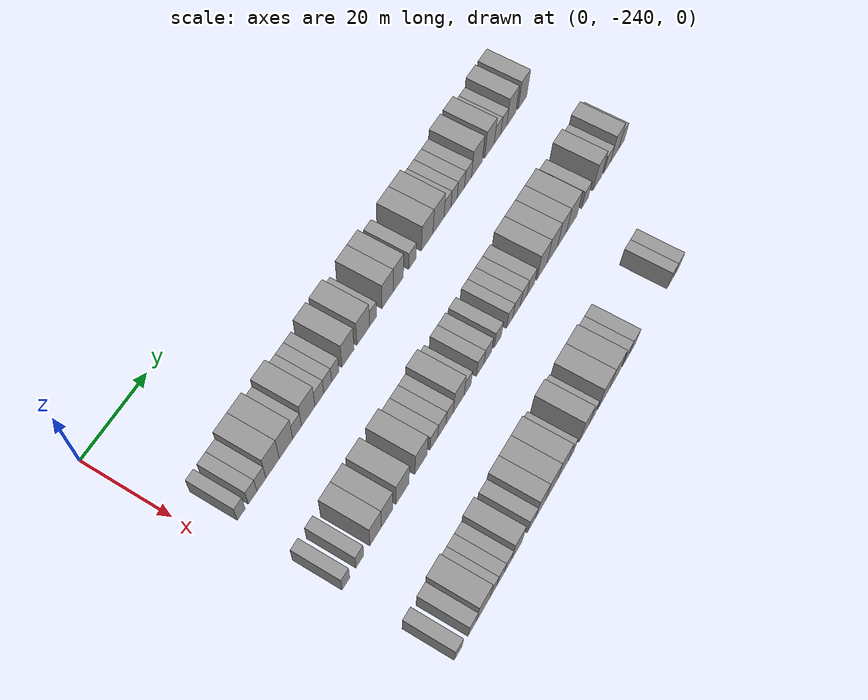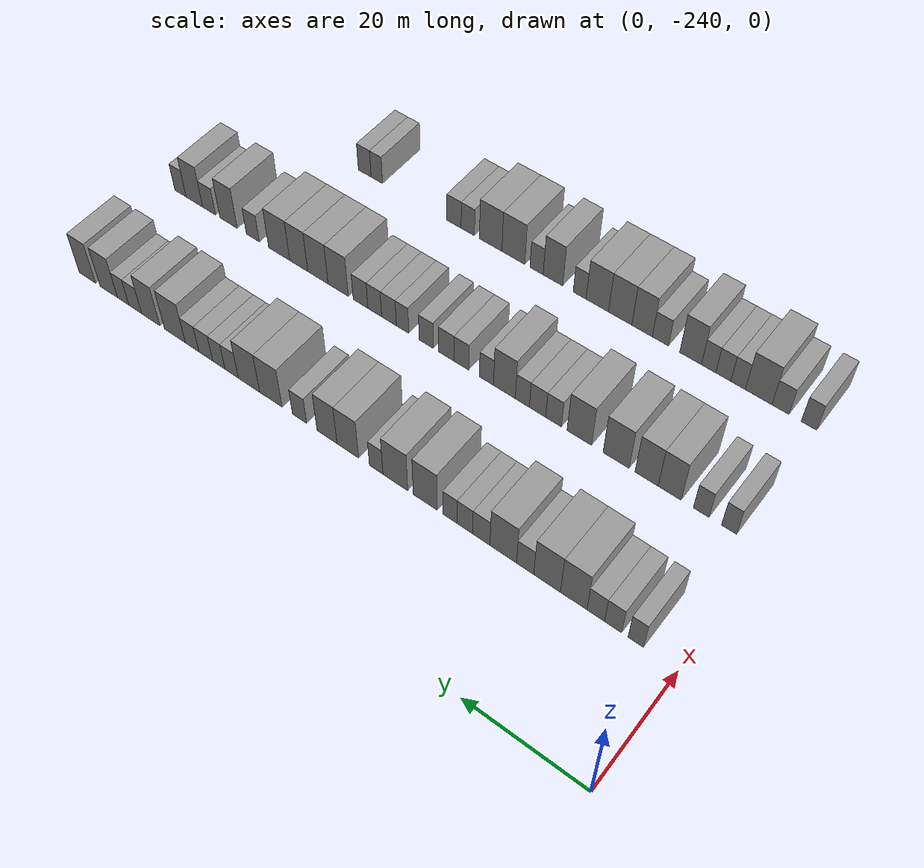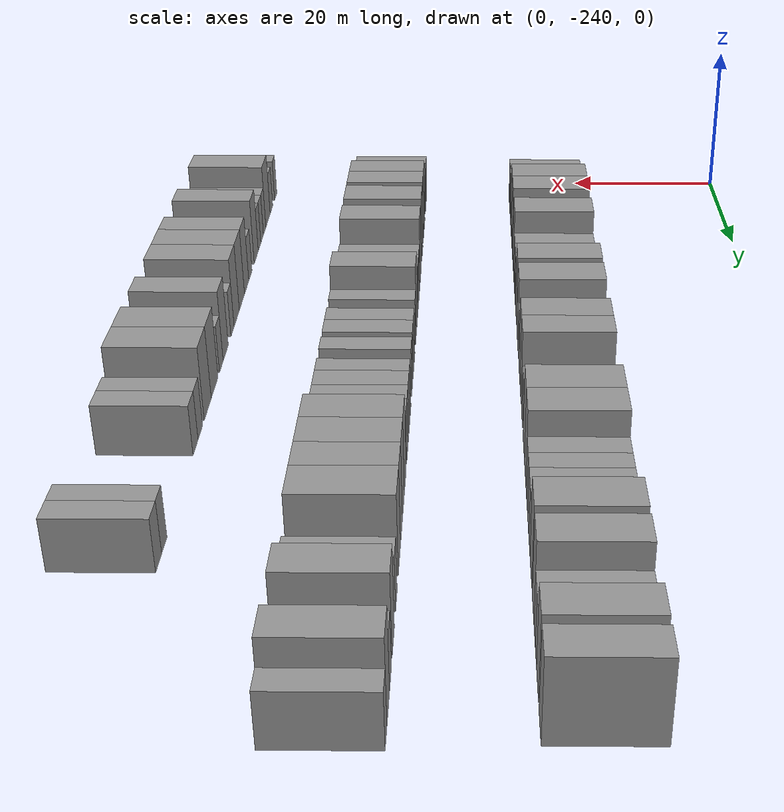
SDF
<sdf version="1.6">
 <world name="default">
  <model name="building_41">
   <static>1</static>
   <pose>25.0000 -233.4140 0 0.000000 0.000000 0.000000</pose>
   <link name="link">
    <pose>0 0 3.00 0 0 0</pose>
    <collision name="collision"><geometry><box><size>10.0000 2.4038 6.0000</size></box></geometry></collision>
    <visual name="visual">
     <cast_shadows>0</cast_shadows>
     <geometry><box><size>10.0000 2.4038 6.0000</size></box></geometry>
     <material>
      <script>
       <uri>model://grey_wall/materials/scripts</uri>
       <uri>model://grey_wall/materials/textures</uri>
       <name>vrc/grey_wall</name>
      </script>
     </material>
    </visual>
   </link>
  </model>
  <model name="building_42">
   <static>1</static>
   <pose>25.0000 -229.8659 0 0.000000 0.000000 0.000000</pose>
   <link name="link">
    <pose>0 0 3.00 0 0 0</pose>
    <collision name="collision"><geometry><box><size>10.0000 2.6924 6.0000</size></box></geometry></collision>
    <visual name="visual">
     <cast_shadows>0</cast_shadows>
     <geometry><box><size>10.0000 2.6924 6.0000</size></box></geometry>
     <material>
      <script>
       <uri>model://grey_wall/materials/scripts</uri>
       <uri>model://grey_wall/materials/textures</uri>
       <name>vrc/grey_wall</name>
      </script>
     </material>
    </visual>
   </link>
  </model>
  <model name="building_43">
   <static>1</static>
   <pose>25.0000 -227.1198 0 0.000000 0.000000 0.000000</pose>
   <link name="link">
    <pose>0 0 3.00 0 0 0</pose>
    <collision name="collision"><geometry><box><size>10.0000 2.7999 6.0000</size></box></geometry></collision>
    <visual name="visual">
     <cast_shadows>0</cast_shadows>
     <geometry><box><size>10.0000 2.7999 6.0000</size></box></geometry>
     <material>
      <script>
       <uri>model://grey_wall/materials/scripts</uri>
       <uri>model://grey_wall/materials/textures</uri>
       <name>vrc/grey_wall</name>
      </script>
     </material>
    </visual>
   </link>
  </model>
  <model name="building_44">
   <static>1</static>
   <pose>25.0000 -223.5872 0 0.000000 0.000000 0.000000</pose>
   <link name="link">
    <pose>0 0 4.50 0 0 0</pose>
    <collision name="collision"><geometry><box><size>10.0000 4.2653 9.0000</size></box></geometry></collision>
    <visual name="visual">
     <cast_shadows>0</cast_shadows>
     <geometry><box><size>10.0000 4.2653 9.0000</size></box></geometry>
     <material>
      <script>
       <uri>model://grey_wall/materials/scripts</uri>
       <uri>model://grey_wall/materials/textures</uri>
       <name>vrc/grey_wall</name>
      </script>
     </material>
    </visual>
   </link>
  </model>
  <model name="building_45">
   <static>1</static>
   <pose>25.0000 -219.2611 0 0.000000 0.000000 0.000000</pose>
   <link name="link">
    <pose>0 0 4.50 0 0 0</pose>
    <collision name="collision"><geometry><box><size>10.0000 4.3868 9.0000</size></box></geometry></collision>
    <visual name="visual">
     <cast_shadows>0</cast_shadows>
     <geometry><box><size>10.0000 4.3868 9.0000</size></box></geometry>
     <material>
      <script>
       <uri>model://grey_wall/materials/scripts</uri>
       <uri>model://grey_wall/materials/textures</uri>
       <name>vrc/grey_wall</name>
      </script>
     </material>
    </visual>
   </link>
  </model>
  <model name="building_46">
   <static>1</static>
   <pose>25.0000 -215.6398 0 0.000000 0.000000 0.000000</pose>
   <link name="link">
    <pose>0 0 3.00 0 0 0</pose>
    <collision name="collision"><geometry><box><size>10.0000 2.8558 6.0000</size></box></geometry></collision>
    <visual name="visual">
     <cast_shadows>0</cast_shadows>
     <geometry><box><size>10.0000 2.8558 6.0000</size></box></geometry>
     <material>
      <script>
       <uri>model://grey_wall/materials/scripts</uri>
       <uri>model://grey_wall/materials/textures</uri>
       <name>vrc/grey_wall</name>
      </script>
     </material>
    </visual>
   </link>
  </model>
  <model name="building_47">
   <static>1</static>
   <pose>25.0000 -211.9693 0 0.000000 0.000000 0.000000</pose>
   <link name="link">
    <pose>0 0 4.50 0 0 0</pose>
    <collision name="collision"><geometry><box><size>10.0000 4.4852 9.0000</size></box></geometry></collision>
    <visual name="visual">
     <cast_shadows>0</cast_shadows>
     <geometry><box><size>10.0000 4.4852 9.0000</size></box></geometry>
     <material>
      <script>
       <uri>model://grey_wall/materials/scripts</uri>
       <uri>model://grey_wall/materials/textures</uri>
       <name>vrc/grey_wall</name>
      </script>
     </material>
    </visual>
   </link>
  </model>
  <model name="building_48">
   <static>1</static>
   <pose>25.0000 -208.2581 0 0.000000 0.000000 0.000000</pose>
   <link name="link">
    <pose>0 0 3.00 0 0 0</pose>
    <collision name="collision"><geometry><box><size>10.0000 2.9372 6.0000</size></box></geometry></collision>
    <visual name="visual">
     <cast_shadows>0</cast_shadows>
     <geometry><box><size>10.0000 2.9372 6.0000</size></box></geometry>
     <material>
      <script>
       <uri>model://grey_wall/materials/scripts</uri>
       <uri>model://grey_wall/materials/textures</uri>
       <name>vrc/grey_wall</name>
      </script>
     </material>
    </visual>
   </link>
  </model>
  <model name="building_49">
   <static>1</static>
   <pose>25.0000 -205.4530 0 0.000000 0.000000 0.000000</pose>
   <link name="link">
    <pose>0 0 3.00 0 0 0</pose>
    <collision name="collision"><geometry><box><size>10.0000 2.6730 6.0000</size></box></geometry></collision>
    <visual name="visual">
     <cast_shadows>0</cast_shadows>
     <geometry><box><size>10.0000 2.6730 6.0000</size></box></geometry>
     <material>
      <script>
       <uri>model://grey_wall/materials/scripts</uri>
       <uri>model://grey_wall/materials/textures</uri>
       <name>vrc/grey_wall</name>
      </script>
     </material>
    </visual>
   </link>
  </model>
  <model name="building_50">
   <static>1</static>
   <pose>25.0000 -202.8707 0 0.000000 0.000000 0.000000</pose>
   <link name="link">
    <pose>0 0 3.00 0 0 0</pose>
    <collision name="collision"><geometry><box><size>10.0000 2.4918 6.0000</size></box></geometry></collision>
    <visual name="visual">
     <cast_shadows>0</cast_shadows>
     <geometry><box><size>10.0000 2.4918 6.0000</size></box></geometry>
     <material>
      <script>
       <uri>model://grey_wall/materials/scripts</uri>
       <uri>model://grey_wall/materials/textures</uri>
       <name>vrc/grey_wall</name>
      </script>
     </material>
    </visual>
   </link>
  </model>
  <model name="building_51">
   <static>1</static>
   <pose>25.0000 -198.5113 0 0.000000 0.000000 0.000000</pose>
   <link name="link">
    <pose>0 0 4.50 0 0 0</pose>
    <collision name="collision"><geometry><box><size>10.0000 4.2268 9.0000</size></box></geometry></collision>
    <visual name="visual">
     <cast_shadows>0</cast_shadows>
     <geometry><box><size>10.0000 4.2268 9.0000</size></box></geometry>
     <material>
      <script>
       <uri>model://grey_wall/materials/scripts</uri>
       <uri>model://grey_wall/materials/textures</uri>
       <name>vrc/grey_wall</name>
      </script>
     </material>
    </visual>
   </link>
  </model>
  <model name="building_52">
   <static>1</static>
   <pose>25.0000 -193.1591 0 0.000000 0.000000 0.000000</pose>
   <link name="link">
    <pose>0 0 4.50 0 0 0</pose>
    <collision name="collision"><geometry><box><size>10.0000 4.4777 9.0000</size></box></geometry></collision>
    <visual name="visual">
     <cast_shadows>0</cast_shadows>
     <geometry><box><size>10.0000 4.4777 9.0000</size></box></geometry>
     <material>
      <script>
       <uri>model://grey_wall/materials/scripts</uri>
       <uri>model://grey_wall/materials/textures</uri>
       <name>vrc/grey_wall</name>
      </script>
     </material>
    </visual>
   </link>
  </model>
  <model name="building_53">
   <static>1</static>
   <pose>25.0000 -189.6882 0 0.000000 0.000000 0.000000</pose>
   <link name="link">
    <pose>0 0 3.00 0 0 0</pose>
    <collision name="collision"><geometry><box><size>10.0000 2.4640 6.0000</size></box></geometry></collision>
    <visual name="visual">
     <cast_shadows>0</cast_shadows>
     <geometry><box><size>10.0000 2.4640 6.0000</size></box></geometry>
     <material>
      <script>
       <uri>model://grey_wall/materials/scripts</uri>
       <uri>model://grey_wall/materials/textures</uri>
       <name>vrc/grey_wall</name>
      </script>
     </material>
    </visual>
   </link>
  </model>
  <model name="building_54">
   <static>1</static>
   <pose>25.0000 -184.4387 0 0.000000 0.000000 0.000000</pose>
   <link name="link">
    <pose>0 0 4.50 0 0 0</pose>
    <collision name="collision"><geometry><box><size>10.0000 4.0350 9.0000</size></box></geometry></collision>
    <visual name="visual">
     <cast_shadows>0</cast_shadows>
     <geometry><box><size>10.0000 4.0350 9.0000</size></box></geometry>
     <material>
      <script>
       <uri>model://grey_wall/materials/scripts</uri>
       <uri>model://grey_wall/materials/textures</uri>
       <name>vrc/grey_wall</name>
      </script>
     </material>
    </visual>
   </link>
  </model>
  <model name="building_55">
   <static>1</static>
   <pose>25.0000 -180.5391 0 0.000000 0.000000 0.000000</pose>
   <link name="link">
    <pose>0 0 4.50 0 0 0</pose>
    <collision name="collision"><geometry><box><size>10.0000 3.7642 9.0000</size></box></geometry></collision>
    <visual name="visual">
     <cast_shadows>0</cast_shadows>
     <geometry><box><size>10.0000 3.7642 9.0000</size></box></geometry>
     <material>
      <script>
       <uri>model://grey_wall/materials/scripts</uri>
       <uri>model://grey_wall/materials/textures</uri>
       <name>vrc/grey_wall</name>
      </script>
     </material>
    </visual>
   </link>
  </model>
  <model name="building_56">
   <static>1</static>
   <pose>25.0000 -175.2865 0 0.000000 0.000000 0.000000</pose>
   <link name="link">
    <pose>0 0 3.00 0 0 0</pose>
    <collision name="collision"><geometry><box><size>10.0000 2.7409 6.0000</size></box></geometry></collision>
    <visual name="visual">
     <cast_shadows>0</cast_shadows>
     <geometry><box><size>10.0000 2.7409 6.0000</size></box></geometry>
     <material>
      <script>
       <uri>model://grey_wall/materials/scripts</uri>
       <uri>model://grey_wall/materials/textures</uri>
       <name>vrc/grey_wall</name>
      </script>
     </material>
    </visual>
   </link>
  </model>
  <model name="building_57">
   <static>1</static>
   <pose>25.0000 -169.7034 0 0.000000 0.000000 0.000000</pose>
   <link name="link">
    <pose>0 0 4.50 0 0 0</pose>
    <collision name="collision"><geometry><box><size>10.0000 4.4254 9.0000</size></box></geometry></collision>
    <visual name="visual">
     <cast_shadows>0</cast_shadows>
     <geometry><box><size>10.0000 4.4254 9.0000</size></box></geometry>
     <material>
      <script>
       <uri>model://grey_wall/materials/scripts</uri>
       <uri>model://grey_wall/materials/textures</uri>
       <name>vrc/grey_wall</name>
      </script>
     </material>
    </visual>
   </link>
  </model>
  <model name="building_58">
   <static>1</static>
   <pose>25.0000 -165.3621 0 0.000000 0.000000 0.000000</pose>
   <link name="link">
    <pose>0 0 4.50 0 0 0</pose>
    <collision name="collision"><geometry><box><size>10.0000 4.2572 9.0000</size></box></geometry></collision>
    <visual name="visual">
     <cast_shadows>0</cast_shadows>
     <geometry><box><size>10.0000 4.2572 9.0000</size></box></geometry>
     <material>
      <script>
       <uri>model://grey_wall/materials/scripts</uri>
       <uri>model://grey_wall/materials/textures</uri>
       <name>vrc/grey_wall</name>
      </script>
     </material>
    </visual>
   </link>
  </model>
  <model name="building_59">
   <static>1</static>
   <pose>25.0000 -161.8809 0 0.000000 0.000000 0.000000</pose>
   <link name="link">
    <pose>0 0 3.00 0 0 0</pose>
    <collision name="collision"><geometry><box><size>10.0000 2.7051 6.0000</size></box></geometry></collision>
    <visual name="visual">
     <cast_shadows>0</cast_shadows>
     <geometry><box><size>10.0000 2.7051 6.0000</size></box></geometry>
     <material>
      <script>
       <uri>model://grey_wall/materials/scripts</uri>
       <uri>model://grey_wall/materials/textures</uri>
       <name>vrc/grey_wall</name>
      </script>
     </material>
    </visual>
   </link>
  </model>
  <model name="building_60">
   <static>1</static>
   <pose>25.0000 -159.2859 0 0.000000 0.000000 0.000000</pose>
   <link name="link">
    <pose>0 0 3.00 0 0 0</pose>
    <collision name="collision"><geometry><box><size>10.0000 2.4850 6.0000</size></box></geometry></collision>
    <visual name="visual">
     <cast_shadows>0</cast_shadows>
     <geometry><box><size>10.0000 2.4850 6.0000</size></box></geometry>
     <material>
      <script>
       <uri>model://grey_wall/materials/scripts</uri>
       <uri>model://grey_wall/materials/textures</uri>
       <name>vrc/grey_wall</name>
      </script>
     </material>
    </visual>
   </link>
  </model>
  <model name="building_61">
   <static>1</static>
   <pose>25.0000 -156.6083 0 0.000000 0.000000 0.000000</pose>
   <link name="link">
    <pose>0 0 3.00 0 0 0</pose>
    <collision name="collision"><geometry><box><size>10.0000 2.8703 6.0000</size></box></geometry></collision>
    <visual name="visual">
     <cast_shadows>0</cast_shadows>
     <geometry><box><size>10.0000 2.8703 6.0000</size></box></geometry>
     <material>
      <script>
       <uri>model://grey_wall/materials/scripts</uri>
       <uri>model://grey_wall/materials/textures</uri>
       <name>vrc/grey_wall</name>
      </script>
     </material>
    </visual>
   </link>
  </model>
  <model name="building_62">
   <static>1</static>
   <pose>25.0000 -153.7701 0 0.000000 0.000000 0.000000</pose>
   <link name="link">
    <pose>0 0 3.00 0 0 0</pose>
    <collision name="collision"><geometry><box><size>10.0000 2.8061 6.0000</size></box></geometry></collision>
    <visual name="visual">
     <cast_shadows>0</cast_shadows>
     <geometry><box><size>10.0000 2.8061 6.0000</size></box></geometry>
     <material>
      <script>
       <uri>model://grey_wall/materials/scripts</uri>
       <uri>model://grey_wall/materials/textures</uri>
       <name>vrc/grey_wall</name>
      </script>
     </material>
    </visual>
   </link>
  </model>
  <model name="building_63">
   <static>1</static>
   <pose>25.0000 -150.1823 0 0.000000 0.000000 0.000000</pose>
   <link name="link">
    <pose>0 0 4.50 0 0 0</pose>
    <collision name="collision"><geometry><box><size>10.0000 4.3694 9.0000</size></box></geometry></collision>
    <visual name="visual">
     <cast_shadows>0</cast_shadows>
     <geometry><box><size>10.0000 4.3694 9.0000</size></box></geometry>
     <material>
      <script>
       <uri>model://grey_wall/materials/scripts</uri>
       <uri>model://grey_wall/materials/textures</uri>
       <name>vrc/grey_wall</name>
      </script>
     </material>
    </visual>
   </link>
  </model>
  <model name="building_64">
   <static>1</static>
   <pose>25.0000 -145.0447 0 0.000000 0.000000 0.000000</pose>
   <link name="link">
    <pose>0 0 4.50 0 0 0</pose>
    <collision name="collision"><geometry><box><size>10.0000 3.9057 9.0000</size></box></geometry></collision>
    <visual name="visual">
     <cast_shadows>0</cast_shadows>
     <geometry><box><size>10.0000 3.9057 9.0000</size></box></geometry>
     <material>
      <script>
       <uri>model://grey_wall/materials/scripts</uri>
       <uri>model://grey_wall/materials/textures</uri>
       <name>vrc/grey_wall</name>
      </script>
     </material>
    </visual>
   </link>
  </model>
  <model name="building_65">
   <static>1</static>
   <pose>25.0000 -141.7154 0 0.000000 0.000000 0.000000</pose>
   <link name="link">
    <pose>0 0 3.00 0 0 0</pose>
    <collision name="collision"><geometry><box><size>10.0000 2.7529 6.0000</size></box></geometry></collision>
    <visual name="visual">
     <cast_shadows>0</cast_shadows>
     <geometry><box><size>10.0000 2.7529 6.0000</size></box></geometry>
     <material>
      <script>
       <uri>model://grey_wall/materials/scripts</uri>
       <uri>model://grey_wall/materials/textures</uri>
       <name>vrc/grey_wall</name>
      </script>
     </material>
    </visual>
   </link>
  </model>
  <model name="building_66">
   <static>1</static>
   <pose>25.0000 -139.0992 0 0.000000 0.000000 0.000000</pose>
   <link name="link">
    <pose>0 0 3.00 0 0 0</pose>
    <collision name="collision"><geometry><box><size>10.0000 2.4796 6.0000</size></box></geometry></collision>
    <visual name="visual">
     <cast_shadows>0</cast_shadows>
     <geometry><box><size>10.0000 2.4796 6.0000</size></box></geometry>
     <material>
      <script>
       <uri>model://grey_wall/materials/scripts</uri>
       <uri>model://grey_wall/materials/textures</uri>
       <name>vrc/grey_wall</name>
      </script>
     </material>
    </visual>
   </link>
  </model>
  <model name="building_67">
   <static>1</static>
   <pose>25.0000 -135.9326 0 0.000000 0.000000 0.000000</pose>
   <link name="link">
    <pose>0 0 4.50 0 0 0</pose>
    <collision name="collision"><geometry><box><size>10.0000 3.8536 9.0000</size></box></geometry></collision>
    <visual name="visual">
     <cast_shadows>0</cast_shadows>
     <geometry><box><size>10.0000 3.8536 9.0000</size></box></geometry>
     <material>
      <script>
       <uri>model://grey_wall/materials/scripts</uri>
       <uri>model://grey_wall/materials/textures</uri>
       <name>vrc/grey_wall</name>
      </script>
     </material>
    </visual>
   </link>
  </model>
  <model name="building_68">
   <static>1</static>
   <pose>25.0000 -131.1857 0 0.000000 0.000000 0.000000</pose>
   <link name="link">
    <pose>0 0 4.50 0 0 0</pose>
    <collision name="collision"><geometry><box><size>10.0000 3.6402 9.0000</size></box></geometry></collision>
    <visual name="visual">
     <cast_shadows>0</cast_shadows>
     <geometry><box><size>10.0000 3.6402 9.0000</size></box></geometry>
     <material>
      <script>
       <uri>model://grey_wall/materials/scripts</uri>
       <uri>model://grey_wall/materials/textures</uri>
       <name>vrc/grey_wall</name>
      </script>
     </material>
    </visual>
   </link>
  </model>
  <model name="building_229">
   <static>1</static>
   <pose>47.0000 -234.3491 0 0.000000 0.000000 0.000000</pose>
   <link name="link">
    <pose>0 0 3.00 0 0 0</pose>
    <collision name="collision"><geometry><box><size>10.0000 2.4189 6.0000</size></box></geometry></collision>
    <visual name="visual">
     <cast_shadows>0</cast_shadows>
     <geometry><box><size>10.0000 2.4189 6.0000</size></box></geometry>
     <material>
      <script>
       <uri>model://grey_wall/materials/scripts</uri>
       <uri>model://grey_wall/materials/textures</uri>
       <name>vrc/grey_wall</name>
      </script>
     </material>
    </visual>
   </link>
  </model>
  <model name="building_230">
   <static>1</static>
   <pose>47.0000 -229.8753 0 0.000000 0.000000 0.000000</pose>
   <link name="link">
    <pose>0 0 3.00 0 0 0</pose>
    <collision name="collision"><geometry><box><size>10.0000 2.5286 6.0000</size></box></geometry></collision>
    <visual name="visual">
     <cast_shadows>0</cast_shadows>
     <geometry><box><size>10.0000 2.5286 6.0000</size></box></geometry>
     <material>
      <script>
       <uri>model://grey_wall/materials/scripts</uri>
       <uri>model://grey_wall/materials/textures</uri>
       <name>vrc/grey_wall</name>
      </script>
     </material>
    </visual>
   </link>
  </model>
  <model name="building_231">
   <static>1</static>
   <pose>47.0000 -224.7155 0 0.000000 0.000000 0.000000</pose>
   <link name="link">
    <pose>0 0 4.50 0 0 0</pose>
    <collision name="collision"><geometry><box><size>10.0000 3.7911 9.0000</size></box></geometry></collision>
    <visual name="visual">
     <cast_shadows>0</cast_shadows>
     <geometry><box><size>10.0000 3.7911 9.0000</size></box></geometry>
     <material>
      <script>
       <uri>model://grey_wall/materials/scripts</uri>
       <uri>model://grey_wall/materials/textures</uri>
       <name>vrc/grey_wall</name>
      </script>
     </material>
    </visual>
   </link>
  </model>
  <model name="building_232">
   <static>1</static>
   <pose>47.0000 -220.8886 0 0.000000 0.000000 0.000000</pose>
   <link name="link">
    <pose>0 0 4.50 0 0 0</pose>
    <collision name="collision"><geometry><box><size>10.0000 3.8626 9.0000</size></box></geometry></collision>
    <visual name="visual">
     <cast_shadows>0</cast_shadows>
     <geometry><box><size>10.0000 3.8626 9.0000</size></box></geometry>
     <material>
      <script>
       <uri>model://grey_wall/materials/scripts</uri>
       <uri>model://grey_wall/materials/textures</uri>
       <name>vrc/grey_wall</name>
      </script>
     </material>
    </visual>
   </link>
  </model>
  <model name="building_233">
   <static>1</static>
   <pose>47.0000 -215.7398 0 0.000000 0.000000 0.000000</pose>
   <link name="link">
    <pose>0 0 4.50 0 0 0</pose>
    <collision name="collision"><geometry><box><size>10.0000 4.4350 9.0000</size></box></geometry></collision>
    <visual name="visual">
     <cast_shadows>0</cast_shadows>
     <geometry><box><size>10.0000 4.4350 9.0000</size></box></geometry>
     <material>
      <script>
       <uri>model://grey_wall/materials/scripts</uri>
       <uri>model://grey_wall/materials/textures</uri>
       <name>vrc/grey_wall</name>
      </script>
     </material>
    </visual>
   </link>
  </model>
  <model name="building_234">
   <static>1</static>
   <pose>47.0000 -209.3943 0 0.000000 0.000000 0.000000</pose>
   <link name="link">
    <pose>0 0 4.50 0 0 0</pose>
    <collision name="collision"><geometry><box><size>10.0000 4.2561 9.0000</size></box></geometry></collision>
    <visual name="visual">
     <cast_shadows>0</cast_shadows>
     <geometry><box><size>10.0000 4.2561 9.0000</size></box></geometry>
     <material>
      <script>
       <uri>model://grey_wall/materials/scripts</uri>
       <uri>model://grey_wall/materials/textures</uri>
       <name>vrc/grey_wall</name>
      </script>
     </material>
    </visual>
   </link>
  </model>
  <model name="building_235">
   <static>1</static>
   <pose>47.0000 -204.8738 0 0.000000 0.000000 0.000000</pose>
   <link name="link">
    <pose>0 0 3.00 0 0 0</pose>
    <collision name="collision"><geometry><box><size>10.0000 2.7849 6.0000</size></box></geometry></collision>
    <visual name="visual">
     <cast_shadows>0</cast_shadows>
     <geometry><box><size>10.0000 2.7849 6.0000</size></box></geometry>
     <material>
      <script>
       <uri>model://grey_wall/materials/scripts</uri>
       <uri>model://grey_wall/materials/textures</uri>
       <name>vrc/grey_wall</name>
      </script>
     </material>
    </visual>
   </link>
  </model>
  <model name="building_236">
   <static>1</static>
   <pose>47.0000 -202.0239 0 0.000000 0.000000 0.000000</pose>
   <link name="link">
    <pose>0 0 3.00 0 0 0</pose>
    <collision name="collision"><geometry><box><size>10.0000 2.9149 6.0000</size></box></geometry></collision>
    <visual name="visual">
     <cast_shadows>0</cast_shadows>
     <geometry><box><size>10.0000 2.9149 6.0000</size></box></geometry>
     <material>
      <script>
       <uri>model://grey_wall/materials/scripts</uri>
       <uri>model://grey_wall/materials/textures</uri>
       <name>vrc/grey_wall</name>
      </script>
     </material>
    </visual>
   </link>
  </model>
  <model name="building_237">
   <static>1</static>
   <pose>47.0000 -199.2921 0 0.000000 0.000000 0.000000</pose>
   <link name="link">
    <pose>0 0 3.00 0 0 0</pose>
    <collision name="collision"><geometry><box><size>10.0000 2.5487 6.0000</size></box></geometry></collision>
    <visual name="visual">
     <cast_shadows>0</cast_shadows>
     <geometry><box><size>10.0000 2.5487 6.0000</size></box></geometry>
     <material>
      <script>
       <uri>model://grey_wall/materials/scripts</uri>
       <uri>model://grey_wall/materials/textures</uri>
       <name>vrc/grey_wall</name>
      </script>
     </material>
    </visual>
   </link>
  </model>
  <model name="building_238">
   <static>1</static>
   <pose>47.0000 -196.0253 0 0.000000 0.000000 0.000000</pose>
   <link name="link">
    <pose>0 0 4.50 0 0 0</pose>
    <collision name="collision"><geometry><box><size>10.0000 3.9850 9.0000</size></box></geometry></collision>
    <visual name="visual">
     <cast_shadows>0</cast_shadows>
     <geometry><box><size>10.0000 3.9850 9.0000</size></box></geometry>
     <material>
      <script>
       <uri>model://grey_wall/materials/scripts</uri>
       <uri>model://grey_wall/materials/textures</uri>
       <name>vrc/grey_wall</name>
      </script>
     </material>
    </visual>
   </link>
  </model>
  <model name="building_239">
   <static>1</static>
   <pose>47.0000 -192.7365 0 0.000000 0.000000 0.000000</pose>
   <link name="link">
    <pose>0 0 3.00 0 0 0</pose>
    <collision name="collision"><geometry><box><size>10.0000 2.5926 6.0000</size></box></geometry></collision>
    <visual name="visual">
     <cast_shadows>0</cast_shadows>
     <geometry><box><size>10.0000 2.5926 6.0000</size></box></geometry>
     <material>
      <script>
       <uri>model://grey_wall/materials/scripts</uri>
       <uri>model://grey_wall/materials/textures</uri>
       <name>vrc/grey_wall</name>
      </script>
     </material>
    </visual>
   </link>
  </model>
  <model name="building_240">
   <static>1</static>
   <pose>47.0000 -188.0560 0 0.000000 0.000000 0.000000</pose>
   <link name="link">
    <pose>0 0 3.00 0 0 0</pose>
    <collision name="collision"><geometry><box><size>10.0000 2.7683 6.0000</size></box></geometry></collision>
    <visual name="visual">
     <cast_shadows>0</cast_shadows>
     <geometry><box><size>10.0000 2.7683 6.0000</size></box></geometry>
     <material>
      <script>
       <uri>model://grey_wall/materials/scripts</uri>
       <uri>model://grey_wall/materials/textures</uri>
       <name>vrc/grey_wall</name>
      </script>
     </material>
    </visual>
   </link>
  </model>
  <model name="building_241">
   <static>1</static>
   <pose>47.0000 -185.2119 0 0.000000 0.000000 0.000000</pose>
   <link name="link">
    <pose>0 0 3.00 0 0 0</pose>
    <collision name="collision"><geometry><box><size>10.0000 2.9201 6.0000</size></box></geometry></collision>
    <visual name="visual">
     <cast_shadows>0</cast_shadows>
     <geometry><box><size>10.0000 2.9201 6.0000</size></box></geometry>
     <material>
      <script>
       <uri>model://grey_wall/materials/scripts</uri>
       <uri>model://grey_wall/materials/textures</uri>
       <name>vrc/grey_wall</name>
      </script>
     </material>
    </visual>
   </link>
  </model>
  <model name="building_242">
   <static>1</static>
   <pose>47.0000 -181.3926 0 0.000000 0.000000 0.000000</pose>
   <link name="link">
    <pose>0 0 3.00 0 0 0</pose>
    <collision name="collision"><geometry><box><size>10.0000 2.7186 6.0000</size></box></geometry></collision>
    <visual name="visual">
     <cast_shadows>0</cast_shadows>
     <geometry><box><size>10.0000 2.7186 6.0000</size></box></geometry>
     <material>
      <script>
       <uri>model://grey_wall/materials/scripts</uri>
       <uri>model://grey_wall/materials/textures</uri>
       <name>vrc/grey_wall</name>
      </script>
     </material>
    </visual>
   </link>
  </model>
  <model name="building_243">
   <static>1</static>
   <pose>47.0000 -176.8184 0 0.000000 0.000000 0.000000</pose>
   <link name="link">
    <pose>0 0 3.00 0 0 0</pose>
    <collision name="collision"><geometry><box><size>10.0000 2.4297 6.0000</size></box></geometry></collision>
    <visual name="visual">
     <cast_shadows>0</cast_shadows>
     <geometry><box><size>10.0000 2.4297 6.0000</size></box></geometry>
     <material>
      <script>
       <uri>model://grey_wall/materials/scripts</uri>
       <uri>model://grey_wall/materials/textures</uri>
       <name>vrc/grey_wall</name>
      </script>
     </material>
    </visual>
   </link>
  </model>
  <model name="building_244">
   <static>1</static>
   <pose>47.0000 -174.1484 0 0.000000 0.000000 0.000000</pose>
   <link name="link">
    <pose>0 0 3.00 0 0 0</pose>
    <collision name="collision"><geometry><box><size>10.0000 2.9103 6.0000</size></box></geometry></collision>
    <visual name="visual">
     <cast_shadows>0</cast_shadows>
     <geometry><box><size>10.0000 2.9103 6.0000</size></box></geometry>
     <material>
      <script>
       <uri>model://grey_wall/materials/scripts</uri>
       <uri>model://grey_wall/materials/textures</uri>
       <name>vrc/grey_wall</name>
      </script>
     </material>
    </visual>
   </link>
  </model>
  <model name="building_245">
   <static>1</static>
   <pose>47.0000 -171.3339 0 0.000000 0.000000 0.000000</pose>
   <link name="link">
    <pose>0 0 3.00 0 0 0</pose>
    <collision name="collision"><geometry><box><size>10.0000 2.7186 6.0000</size></box></geometry></collision>
    <visual name="visual">
     <cast_shadows>0</cast_shadows>
     <geometry><box><size>10.0000 2.7186 6.0000</size></box></geometry>
     <material>
      <script>
       <uri>model://grey_wall/materials/scripts</uri>
       <uri>model://grey_wall/materials/textures</uri>
       <name>vrc/grey_wall</name>
      </script>
     </material>
    </visual>
   </link>
  </model>
  <model name="building_246">
   <static>1</static>
   <pose>47.0000 -168.5004 0 0.000000 0.000000 0.000000</pose>
   <link name="link">
    <pose>0 0 3.00 0 0 0</pose>
    <collision name="collision"><geometry><box><size>10.0000 2.9485 6.0000</size></box></geometry></collision>
    <visual name="visual">
     <cast_shadows>0</cast_shadows>
     <geometry><box><size>10.0000 2.9485 6.0000</size></box></geometry>
     <material>
      <script>
       <uri>model://grey_wall/materials/scripts</uri>
       <uri>model://grey_wall/materials/textures</uri>
       <name>vrc/grey_wall</name>
      </script>
     </material>
    </visual>
   </link>
  </model>
  <model name="building_247">
   <static>1</static>
   <pose>47.0000 -163.9646 0 0.000000 0.000000 0.000000</pose>
   <link name="link">
    <pose>0 0 4.50 0 0 0</pose>
    <collision name="collision"><geometry><box><size>10.0000 4.1230 9.0000</size></box></geometry></collision>
    <visual name="visual">
     <cast_shadows>0</cast_shadows>
     <geometry><box><size>10.0000 4.1230 9.0000</size></box></geometry>
     <material>
      <script>
       <uri>model://grey_wall/materials/scripts</uri>
       <uri>model://grey_wall/materials/textures</uri>
       <name>vrc/grey_wall</name>
      </script>
     </material>
    </visual>
   </link>
  </model>
  <model name="building_248">
   <static>1</static>
   <pose>47.0000 -159.8003 0 0.000000 0.000000 0.000000</pose>
   <link name="link">
    <pose>0 0 4.50 0 0 0</pose>
    <collision name="collision"><geometry><box><size>10.0000 4.2058 9.0000</size></box></geometry></collision>
    <visual name="visual">
     <cast_shadows>0</cast_shadows>
     <geometry><box><size>10.0000 4.2058 9.0000</size></box></geometry>
     <material>
      <script>
       <uri>model://grey_wall/materials/scripts</uri>
       <uri>model://grey_wall/materials/textures</uri>
       <name>vrc/grey_wall</name>
      </script>
     </material>
    </visual>
   </link>
  </model>
  <model name="building_249">
   <static>1</static>
   <pose>47.0000 -155.8097 0 0.000000 0.000000 0.000000</pose>
   <link name="link">
    <pose>0 0 4.50 0 0 0</pose>
    <collision name="collision"><geometry><box><size>10.0000 3.7754 9.0000</size></box></geometry></collision>
    <visual name="visual">
     <cast_shadows>0</cast_shadows>
     <geometry><box><size>10.0000 3.7754 9.0000</size></box></geometry>
     <material>
      <script>
       <uri>model://grey_wall/materials/scripts</uri>
       <uri>model://grey_wall/materials/textures</uri>
       <name>vrc/grey_wall</name>
      </script>
     </material>
    </visual>
   </link>
  </model>
  <model name="building_250">
   <static>1</static>
   <pose>47.0000 -151.6939 0 0.000000 0.000000 0.000000</pose>
   <link name="link">
    <pose>0 0 4.50 0 0 0</pose>
    <collision name="collision"><geometry><box><size>10.0000 4.4563 9.0000</size></box></geometry></collision>
    <visual name="visual">
     <cast_shadows>0</cast_shadows>
     <geometry><box><size>10.0000 4.4563 9.0000</size></box></geometry>
     <material>
      <script>
       <uri>model://grey_wall/materials/scripts</uri>
       <uri>model://grey_wall/materials/textures</uri>
       <name>vrc/grey_wall</name>
      </script>
     </material>
    </visual>
   </link>
  </model>
  <model name="building_251">
   <static>1</static>
   <pose>47.0000 -146.0649 0 0.000000 0.000000 0.000000</pose>
   <link name="link">
    <pose>0 0 3.00 0 0 0</pose>
    <collision name="collision"><geometry><box><size>10.0000 2.8017 6.0000</size></box></geometry></collision>
    <visual name="visual">
     <cast_shadows>0</cast_shadows>
     <geometry><box><size>10.0000 2.8017 6.0000</size></box></geometry>
     <material>
      <script>
       <uri>model://grey_wall/materials/scripts</uri>
       <uri>model://grey_wall/materials/textures</uri>
       <name>vrc/grey_wall</name>
      </script>
     </material>
    </visual>
   </link>
  </model>
  <model name="building_252">
   <static>1</static>
   <pose>47.0000 -140.7698 0 0.000000 0.000000 0.000000</pose>
   <link name="link">
    <pose>0 0 4.50 0 0 0</pose>
    <collision name="collision"><geometry><box><size>10.0000 3.7886 9.0000</size></box></geometry></collision>
    <visual name="visual">
     <cast_shadows>0</cast_shadows>
     <geometry><box><size>10.0000 3.7886 9.0000</size></box></geometry>
     <material>
      <script>
       <uri>model://grey_wall/materials/scripts</uri>
       <uri>model://grey_wall/materials/textures</uri>
       <name>vrc/grey_wall</name>
      </script>
     </material>
    </visual>
   </link>
  </model>
  <model name="building_253">
   <static>1</static>
   <pose>47.0000 -136.4357 0 0.000000 0.000000 0.000000</pose>
   <link name="link">
    <pose>0 0 3.00 0 0 0</pose>
    <collision name="collision"><geometry><box><size>10.0000 2.8795 6.0000</size></box></geometry></collision>
    <visual name="visual">
     <cast_shadows>0</cast_shadows>
     <geometry><box><size>10.0000 2.8795 6.0000</size></box></geometry>
     <material>
      <script>
       <uri>model://grey_wall/materials/scripts</uri>
       <uri>model://grey_wall/materials/textures</uri>
       <name>vrc/grey_wall</name>
      </script>
     </material>
    </visual>
   </link>
  </model>
  <model name="building_254">
   <static>1</static>
   <pose>47.0000 -133.1325 0 0.000000 0.000000 0.000000</pose>
   <link name="link">
    <pose>0 0 4.50 0 0 0</pose>
    <collision name="collision"><geometry><box><size>10.0000 3.7270 9.0000</size></box></geometry></collision>
    <visual name="visual">
     <cast_shadows>0</cast_shadows>
     <geometry><box><size>10.0000 3.7270 9.0000</size></box></geometry>
     <material>
      <script>
       <uri>model://grey_wall/materials/scripts</uri>
       <uri>model://grey_wall/materials/textures</uri>
       <name>vrc/grey_wall</name>
      </script>
     </material>
    </visual>
   </link>
  </model>
  <model name="building_255">
   <static>1</static>
   <pose>47.0000 -130.0045 0 0.000000 0.000000 0.000000</pose>
   <link name="link">
    <pose>0 0 3.00 0 0 0</pose>
    <collision name="collision"><geometry><box><size>10.0000 2.5291 6.0000</size></box></geometry></collision>
    <visual name="visual">
     <cast_shadows>0</cast_shadows>
     <geometry><box><size>10.0000 2.5291 6.0000</size></box></geometry>
     <material>
      <script>
       <uri>model://grey_wall/materials/scripts</uri>
       <uri>model://grey_wall/materials/textures</uri>
       <name>vrc/grey_wall</name>
      </script>
     </material>
    </visual>
   </link>
  </model>
  <model name="building_420">
   <static>1</static>
   <pose>69.0000 -234.6057 0 0.000000 0.000000 0.000000</pose>
   <link name="link">
    <pose>0 0 3.00 0 0 0</pose>
    <collision name="collision"><geometry><box><size>10.0000 2.5686 6.0000</size></box></geometry></collision>
    <visual name="visual">
     <cast_shadows>0</cast_shadows>
     <geometry><box><size>10.0000 2.5686 6.0000</size></box></geometry>
     <material>
      <script>
       <uri>model://grey_wall/materials/scripts</uri>
       <uri>model://grey_wall/materials/textures</uri>
       <name>vrc/grey_wall</name>
      </script>
     </material>
    </visual>
   </link>
  </model>
  <model name="building_421">
   <static>1</static>
   <pose>69.0000 -229.8954 0 0.000000 0.000000 0.000000</pose>
   <link name="link">
    <pose>0 0 3.00 0 0 0</pose>
    <collision name="collision"><geometry><box><size>10.0000 2.8521 6.0000</size></box></geometry></collision>
    <visual name="visual">
     <cast_shadows>0</cast_shadows>
     <geometry><box><size>10.0000 2.8521 6.0000</size></box></geometry>
     <material>
      <script>
       <uri>model://grey_wall/materials/scripts</uri>
       <uri>model://grey_wall/materials/textures</uri>
       <name>vrc/grey_wall</name>
      </script>
     </material>
    </visual>
   </link>
  </model>
  <model name="building_422">
   <static>1</static>
   <pose>69.0000 -226.2197 0 0.000000 0.000000 0.000000</pose>
   <link name="link">
    <pose>0 0 4.50 0 0 0</pose>
    <collision name="collision"><geometry><box><size>10.0000 4.4993 9.0000</size></box></geometry></collision>
    <visual name="visual">
     <cast_shadows>0</cast_shadows>
     <geometry><box><size>10.0000 4.4993 9.0000</size></box></geometry>
     <material>
      <script>
       <uri>model://grey_wall/materials/scripts</uri>
       <uri>model://grey_wall/materials/textures</uri>
       <name>vrc/grey_wall</name>
      </script>
     </material>
    </visual>
   </link>
  </model>
  <model name="building_423">
   <static>1</static>
   <pose>69.0000 -222.7365 0 0.000000 0.000000 0.000000</pose>
   <link name="link">
    <pose>0 0 3.00 0 0 0</pose>
    <collision name="collision"><geometry><box><size>10.0000 2.4671 6.0000</size></box></geometry></collision>
    <visual name="visual">
     <cast_shadows>0</cast_shadows>
     <geometry><box><size>10.0000 2.4671 6.0000</size></box></geometry>
     <material>
      <script>
       <uri>model://grey_wall/materials/scripts</uri>
       <uri>model://grey_wall/materials/textures</uri>
       <name>vrc/grey_wall</name>
      </script>
     </material>
    </visual>
   </link>
  </model>
  <model name="building_424">
   <static>1</static>
   <pose>69.0000 -220.2055 0 0.000000 0.000000 0.000000</pose>
   <link name="link">
    <pose>0 0 3.00 0 0 0</pose>
    <collision name="collision"><geometry><box><size>10.0000 2.5948 6.0000</size></box></geometry></collision>
    <visual name="visual">
     <cast_shadows>0</cast_shadows>
     <geometry><box><size>10.0000 2.5948 6.0000</size></box></geometry>
     <material>
      <script>
       <uri>model://grey_wall/materials/scripts</uri>
       <uri>model://grey_wall/materials/textures</uri>
       <name>vrc/grey_wall</name>
      </script>
     </material>
    </visual>
   </link>
  </model>
  <model name="building_425">
   <static>1</static>
   <pose>69.0000 -217.6667 0 0.000000 0.000000 0.000000</pose>
   <link name="link">
    <pose>0 0 3.00 0 0 0</pose>
    <collision name="collision"><geometry><box><size>10.0000 2.4826 6.0000</size></box></geometry></collision>
    <visual name="visual">
     <cast_shadows>0</cast_shadows>
     <geometry><box><size>10.0000 2.4826 6.0000</size></box></geometry>
     <material>
      <script>
       <uri>model://grey_wall/materials/scripts</uri>
       <uri>model://grey_wall/materials/textures</uri>
       <name>vrc/grey_wall</name>
      </script>
     </material>
    </visual>
   </link>
  </model>
  <model name="building_426">
   <static>1</static>
   <pose>69.0000 -214.5228 0 0.000000 0.000000 0.000000</pose>
   <link name="link">
    <pose>0 0 4.50 0 0 0</pose>
    <collision name="collision"><geometry><box><size>10.0000 3.8052 9.0000</size></box></geometry></collision>
    <visual name="visual">
     <cast_shadows>0</cast_shadows>
     <geometry><box><size>10.0000 3.8052 9.0000</size></box></geometry>
     <material>
      <script>
       <uri>model://grey_wall/materials/scripts</uri>
       <uri>model://grey_wall/materials/textures</uri>
       <name>vrc/grey_wall</name>
      </script>
     </material>
    </visual>
   </link>
  </model>
  <model name="building_427">
   <static>1</static>
   <pose>69.0000 -209.1785 0 0.000000 0.000000 0.000000</pose>
   <link name="link">
    <pose>0 0 3.00 0 0 0</pose>
    <collision name="collision"><geometry><box><size>10.0000 2.8835 6.0000</size></box></geometry></collision>
    <visual name="visual">
     <cast_shadows>0</cast_shadows>
     <geometry><box><size>10.0000 2.8835 6.0000</size></box></geometry>
     <material>
      <script>
       <uri>model://grey_wall/materials/scripts</uri>
       <uri>model://grey_wall/materials/textures</uri>
       <name>vrc/grey_wall</name>
      </script>
     </material>
    </visual>
   </link>
  </model>
  <model name="building_428">
   <static>1</static>
   <pose>69.0000 -205.8769 0 0.000000 0.000000 0.000000</pose>
   <link name="link">
    <pose>0 0 4.50 0 0 0</pose>
    <collision name="collision"><geometry><box><size>10.0000 3.7196 9.0000</size></box></geometry></collision>
    <visual name="visual">
     <cast_shadows>0</cast_shadows>
     <geometry><box><size>10.0000 3.7196 9.0000</size></box></geometry>
     <material>
      <script>
       <uri>model://grey_wall/materials/scripts</uri>
       <uri>model://grey_wall/materials/textures</uri>
       <name>vrc/grey_wall</name>
      </script>
     </material>
    </visual>
   </link>
  </model>
  <model name="building_429">
   <static>1</static>
   <pose>69.0000 -201.8745 0 0.000000 0.000000 0.000000</pose>
   <link name="link">
    <pose>0 0 4.50 0 0 0</pose>
    <collision name="collision"><geometry><box><size>10.0000 4.2852 9.0000</size></box></geometry></collision>
    <visual name="visual">
     <cast_shadows>0</cast_shadows>
     <geometry><box><size>10.0000 4.2852 9.0000</size></box></geometry>
     <material>
      <script>
       <uri>model://grey_wall/materials/scripts</uri>
       <uri>model://grey_wall/materials/textures</uri>
       <name>vrc/grey_wall</name>
      </script>
     </material>
    </visual>
   </link>
  </model>
  <model name="building_430">
   <static>1</static>
   <pose>69.0000 -197.6601 0 0.000000 0.000000 0.000000</pose>
   <link name="link">
    <pose>0 0 4.50 0 0 0</pose>
    <collision name="collision"><geometry><box><size>10.0000 4.1437 9.0000</size></box></geometry></collision>
    <visual name="visual">
     <cast_shadows>0</cast_shadows>
     <geometry><box><size>10.0000 4.1437 9.0000</size></box></geometry>
     <material>
      <script>
       <uri>model://grey_wall/materials/scripts</uri>
       <uri>model://grey_wall/materials/textures</uri>
       <name>vrc/grey_wall</name>
      </script>
     </material>
    </visual>
   </link>
  </model>
  <model name="building_431">
   <static>1</static>
   <pose>69.0000 -194.3809 0 0.000000 0.000000 0.000000</pose>
   <link name="link">
    <pose>0 0 3.00 0 0 0</pose>
    <collision name="collision"><geometry><box><size>10.0000 2.4147 6.0000</size></box></geometry></collision>
    <visual name="visual">
     <cast_shadows>0</cast_shadows>
     <geometry><box><size>10.0000 2.4147 6.0000</size></box></geometry>
     <material>
      <script>
       <uri>model://grey_wall/materials/scripts</uri>
       <uri>model://grey_wall/materials/textures</uri>
       <name>vrc/grey_wall</name>
      </script>
     </material>
    </visual>
   </link>
  </model>
  <model name="building_432">
   <static>1</static>
   <pose>69.0000 -189.3086 0 0.000000 0.000000 0.000000</pose>
   <link name="link">
    <pose>0 0 4.50 0 0 0</pose>
    <collision name="collision"><geometry><box><size>10.0000 3.7299 9.0000</size></box></geometry></collision>
    <visual name="visual">
     <cast_shadows>0</cast_shadows>
     <geometry><box><size>10.0000 3.7299 9.0000</size></box></geometry>
     <material>
      <script>
       <uri>model://grey_wall/materials/scripts</uri>
       <uri>model://grey_wall/materials/textures</uri>
       <name>vrc/grey_wall</name>
      </script>
     </material>
    </visual>
   </link>
  </model>
  <model name="building_433">
   <static>1</static>
   <pose>69.0000 -186.1651 0 0.000000 0.000000 0.000000</pose>
   <link name="link">
    <pose>0 0 3.00 0 0 0</pose>
    <collision name="collision"><geometry><box><size>10.0000 2.5570 6.0000</size></box></geometry></collision>
    <visual name="visual">
     <cast_shadows>0</cast_shadows>
     <geometry><box><size>10.0000 2.5570 6.0000</size></box></geometry>
     <material>
      <script>
       <uri>model://grey_wall/materials/scripts</uri>
       <uri>model://grey_wall/materials/textures</uri>
       <name>vrc/grey_wall</name>
      </script>
     </material>
    </visual>
   </link>
  </model>
  <model name="building_434">
   <static>1</static>
   <pose>69.0000 -181.6432 0 0.000000 0.000000 0.000000</pose>
   <link name="link">
    <pose>0 0 4.50 0 0 0</pose>
    <collision name="collision"><geometry><box><size>10.0000 4.4868 9.0000</size></box></geometry></collision>
    <visual name="visual">
     <cast_shadows>0</cast_shadows>
     <geometry><box><size>10.0000 4.4868 9.0000</size></box></geometry>
     <material>
      <script>
       <uri>model://grey_wall/materials/scripts</uri>
       <uri>model://grey_wall/materials/textures</uri>
       <name>vrc/grey_wall</name>
      </script>
     </material>
    </visual>
   </link>
  </model>
  <model name="building_435">
   <static>1</static>
   <pose>69.0000 -177.1706 0 0.000000 0.000000 0.000000</pose>
   <link name="link">
    <pose>0 0 4.50 0 0 0</pose>
    <collision name="collision"><geometry><box><size>10.0000 4.4584 9.0000</size></box></geometry></collision>
    <visual name="visual">
     <cast_shadows>0</cast_shadows>
     <geometry><box><size>10.0000 4.4584 9.0000</size></box></geometry>
     <material>
      <script>
       <uri>model://grey_wall/materials/scripts</uri>
       <uri>model://grey_wall/materials/textures</uri>
       <name>vrc/grey_wall</name>
      </script>
     </material>
    </visual>
   </link>
  </model>
  <model name="building_436">
   <static>1</static>
   <pose>69.0000 -172.5979 0 0.000000 0.000000 0.000000</pose>
   <link name="link">
    <pose>0 0 3.00 0 0 0</pose>
    <collision name="collision"><geometry><box><size>10.0000 2.6869 6.0000</size></box></geometry></collision>
    <visual name="visual">
     <cast_shadows>0</cast_shadows>
     <geometry><box><size>10.0000 2.6869 6.0000</size></box></geometry>
     <material>
      <script>
       <uri>model://grey_wall/materials/scripts</uri>
       <uri>model://grey_wall/materials/textures</uri>
       <name>vrc/grey_wall</name>
      </script>
     </material>
    </visual>
   </link>
  </model>
  <model name="building_437">
   <static>1</static>
   <pose>69.0000 -169.8117 0 0.000000 0.000000 0.000000</pose>
   <link name="link">
    <pose>0 0 3.00 0 0 0</pose>
    <collision name="collision"><geometry><box><size>10.0000 2.8855 6.0000</size></box></geometry></collision>
    <visual name="visual">
     <cast_shadows>0</cast_shadows>
     <geometry><box><size>10.0000 2.8855 6.0000</size></box></geometry>
     <material>
      <script>
       <uri>model://grey_wall/materials/scripts</uri>
       <uri>model://grey_wall/materials/textures</uri>
       <name>vrc/grey_wall</name>
      </script>
     </material>
    </visual>
   </link>
  </model>
  <model name="building_438">
   <static>1</static>
   <pose>69.0000 -153.6893 0 0.000000 0.000000 0.000000</pose>
   <link name="link">
    <pose>0 0 3.00 0 0 0</pose>
    <collision name="collision"><geometry><box><size>10.0000 2.4531 6.0000</size></box></geometry></collision>
    <visual name="visual">
     <cast_shadows>0</cast_shadows>
     <geometry><box><size>10.0000 2.4531 6.0000</size></box></geometry>
     <material>
      <script>
       <uri>model://grey_wall/materials/scripts</uri>
       <uri>model://grey_wall/materials/textures</uri>
       <name>vrc/grey_wall</name>
      </script>
     </material>
    </visual>
   </link>
  </model>
  <model name="building_439">
   <static>1</static>
   <pose>69.0000 -151.0960 0 0.000000 0.000000 0.000000</pose>
   <link name="link">
    <pose>0 0 3.00 0 0 0</pose>
    <collision name="collision"><geometry><box><size>10.0000 2.7334 6.0000</size></box></geometry></collision>
    <visual name="visual">
     <cast_shadows>0</cast_shadows>
     <geometry><box><size>10.0000 2.7334 6.0000</size></box></geometry>
     <material>
      <script>
       <uri>model://grey_wall/materials/scripts</uri>
       <uri>model://grey_wall/materials/textures</uri>
       <name>vrc/grey_wall</name>
      </script>
     </material>
    </visual>
   </link>
  </model>
 </world>
</sdf>
